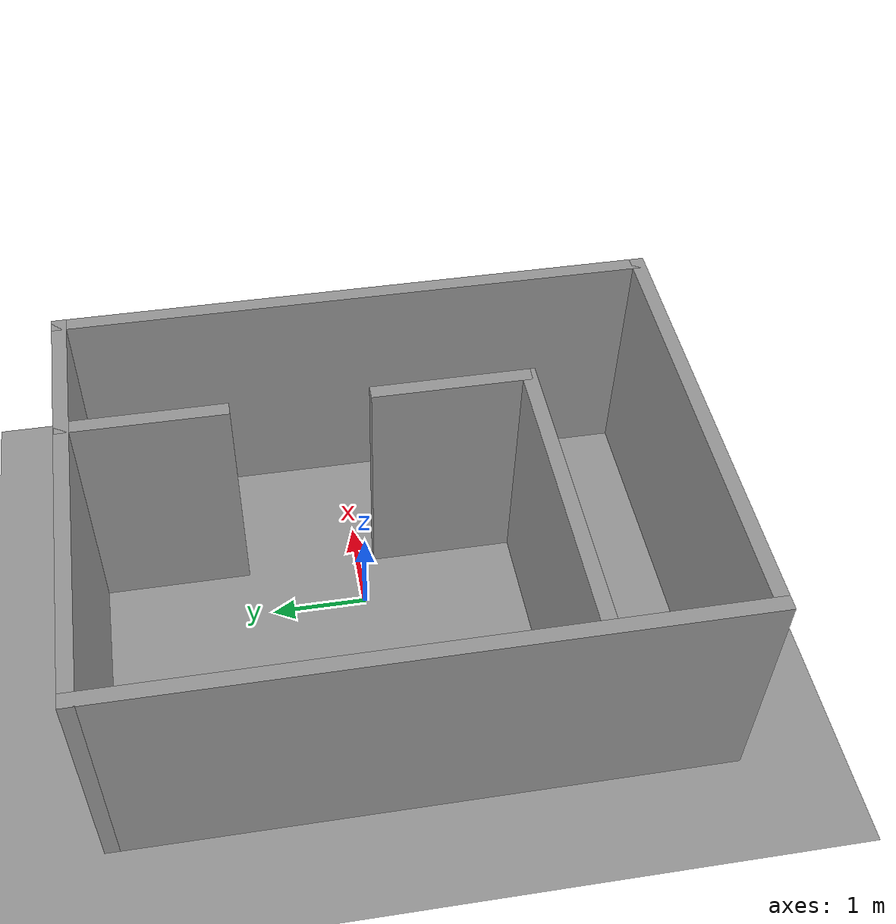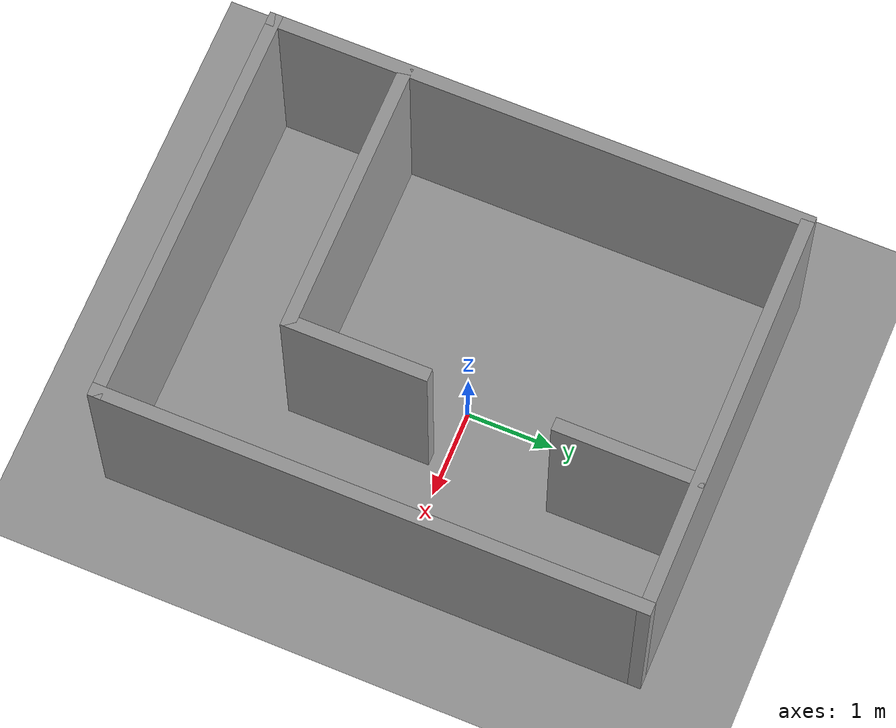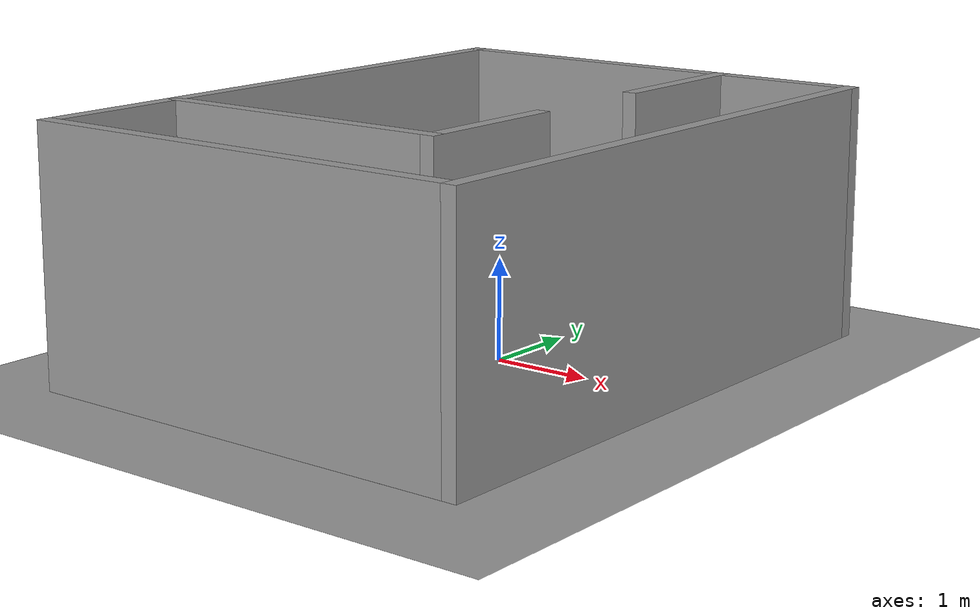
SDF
<sdf version="1.6">
 <world name="default">
  <light name="sun" type="directional">
   <pose>0 0 10 0 -0 0</pose>
   <diffuse>0.8 0.8 0.8 1</diffuse>
   <specular>0.2 0.2 0.2 1</specular>
   <attenuation>
    <range>1000</range>
    <constant>0.9</constant>
    <linear>0.01</linear>
    <quadratic>0.001</quadratic>
   </attenuation>
   <direction>0.5 0.1 -0.9</direction>
  </light>
  <scene><ambient>0.4 0.4 0.4 1</ambient><background>0.7 0.7 0.7 1</background><shadows>1</shadows></scene>
  <physics name="default_physics" default="0" type="ode">
   <max_step_size>0.01</max_step_size>
   <real_time_factor>1</real_time_factor>
   <real_time_update_rate>100</real_time_update_rate>
  </physics>
  <model name="ground_plane_0">
   <static>1</static>
   <link name="link">
    <collision name="collision">
     <geometry><plane><normal>0 0 1</normal><size>100 100</size></plane></geometry>
     <surface><friction><ode><mu>100</mu><mu2>50</mu2></ode></friction></surface>
    </collision>
    <visual name="visual">
     <cast_shadows>0</cast_shadows>
     <geometry><plane><normal>0 0 1</normal><size>100 100</size></plane></geometry>
     <material>
      <script><uri>file://media/materials/scripts/gazebo.material</uri><name>Gazebo/Grey</name></script>
     </material>
    </visual>
    <velocity_decay><linear>0</linear><angular>0</angular></velocity_decay>
   </link>
   <pose>0.497681 0 0 0 -0 0</pose>
  </model>
  <gravity>0 0 -9.8</gravity>
  <magnetic_field>6e-06 2.3e-05 -4.2e-05</magnetic_field>
  <atmosphere type="adiabatic"/>
  <spherical_coordinates>
   <surface_model>EARTH_WGS84</surface_model>
   <latitude_deg>0</latitude_deg>
   <longitude_deg>0</longitude_deg>
   <elevation>0</elevation>
   <heading_deg>0</heading_deg>
  </spherical_coordinates>
  <model name="Walls">
   <pose>-0.194217 -0.234875 0 0 -0 0</pose>
   <link name="Wall_0">
    <collision name="Wall_0_Collision">
     <geometry><box><size>6.25 0.15 2.5</size></box></geometry>
     <pose>0 0 1.25 0 -0 0</pose>
    </collision>
    <visual name="Wall_0_Visual">
     <pose>0 0 1.25 0 -0 0</pose>
     <geometry><box><size>6.25 0.15 2.5</size></box></geometry>
     <material>
      <script><uri>file://media/materials/scripts/gazebo.material</uri><name>Gazebo/Grey</name></script>
      <ambient>1 1 1 1</ambient>
     </material>
    </visual>
    <pose>-2.3 0 0 0 0 -1.5708</pose>
   </link>
   <link name="Wall_1">
    <collision name="Wall_1_Collision">
     <geometry><box><size>4.75 0.15 2.5</size></box></geometry>
     <pose>0 0 1.25 0 -0 0</pose>
    </collision>
    <visual name="Wall_1_Visual">
     <pose>0 0 1.25 0 -0 0</pose>
     <geometry><box><size>4.75 0.15 2.5</size></box></geometry>
     <material>
      <script><uri>file://media/materials/scripts/gazebo.material</uri><name>Gazebo/Grey</name></script>
      <ambient>1 1 1 1</ambient>
     </material>
    </visual>
    <pose>0 -3.05 0 0 -0 0</pose>
   </link>
   <link name="Wall_10">
    <collision name="Wall_10_Collision">
     <geometry><box><size>1.65852 0.15 2.5</size></box></geometry>
     <pose>0 0 1.25 0 -0 0</pose>
    </collision>
    <visual name="Wall_10_Visual">
     <pose>0 0 1.25 0 -0 0</pose>
     <geometry><box><size>1.65852 0.15 2.5</size></box></geometry>
     <material>
      <script><uri>file://media/materials/scripts/gazebo.material</uri><name>Gazebo/Grey</name></script>
      <ambient>1 1 1 1</ambient>
     </material>
    </visual>
    <pose>0.822834 -0.768363 0 0 -0 1.5708</pose>
   </link>
   <link name="Wall_3">
    <collision name="Wall_3_Collision">
     <geometry><box><size>6.25 0.15 2.5</size></box></geometry>
     <pose>0 0 1.25 0 -0 0</pose>
    </collision>
    <visual name="Wall_3_Visual">
     <pose>0 0 1.25 0 -0 0</pose>
     <geometry><box><size>6.25 0.15 2.5</size></box></geometry>
     <material>
      <script><uri>file://media/materials/scripts/gazebo.material</uri><name>Gazebo/Grey</name></script>
      <ambient>1 1 1 1</ambient>
     </material>
    </visual>
    <pose>2.3 0 0 0 -0 1.5708</pose>
   </link>
   <link name="Wall_4">
    <collision name="Wall_4_Collision">
     <geometry><box><size>4.75 0.15 2.5</size></box></geometry>
     <pose>0 0 1.25 0 -0 0</pose>
    </collision>
    <visual name="Wall_4_Visual">
     <pose>0 0 1.25 0 -0 0</pose>
     <geometry><box><size>4.75 0.15 2.5</size></box></geometry>
     <material>
      <script><uri>file://media/materials/scripts/gazebo.material</uri><name>Gazebo/Grey</name></script>
      <ambient>1 1 1 1</ambient>
     </material>
    </visual>
    <pose>0 3.05 0 0 -0 3.14159</pose>
   </link>
   <link name="Wall_6">
    <collision name="Wall_6_Collision">
     <geometry><box><size>1.67916 0.15 2.5</size></box></geometry>
     <pose>0 0 1.25 0 -0 0</pose>
    </collision>
    <visual name="Wall_6_Visual">
     <pose>0 0 1.25 0 -0 0</pose>
     <geometry><box><size>1.67916 0.15 2.5</size></box></geometry>
     <material>
      <script><uri>file://media/materials/scripts/gazebo.material</uri><name>Gazebo/Grey</name></script>
      <ambient>1 1 1 1</ambient>
     </material>
    </visual>
    <pose>0.822834 2.27884 0 0 0 -1.5708</pose>
   </link>
   <link name="Wall_9">
    <collision name="Wall_9_Collision">
     <geometry><box><size>3.22738 0.15 2.5</size></box></geometry>
     <pose>0 0 1.25 0 -0 0</pose>
    </collision>
    <visual name="Wall_9_Visual">
     <pose>0 0 1.25 0 -0 0</pose>
     <geometry><box><size>3.22738 0.15 2.5</size></box></geometry>
     <material>
      <script><uri>file://media/materials/scripts/gazebo.material</uri><name>Gazebo/Grey</name></script>
      <ambient>1 1 1 1</ambient>
     </material>
    </visual>
    <pose>-0.715855 -1.52262 0 0 -0 0</pose>
   </link>
   <static>1</static>
  </model>
 </world>
</sdf>
